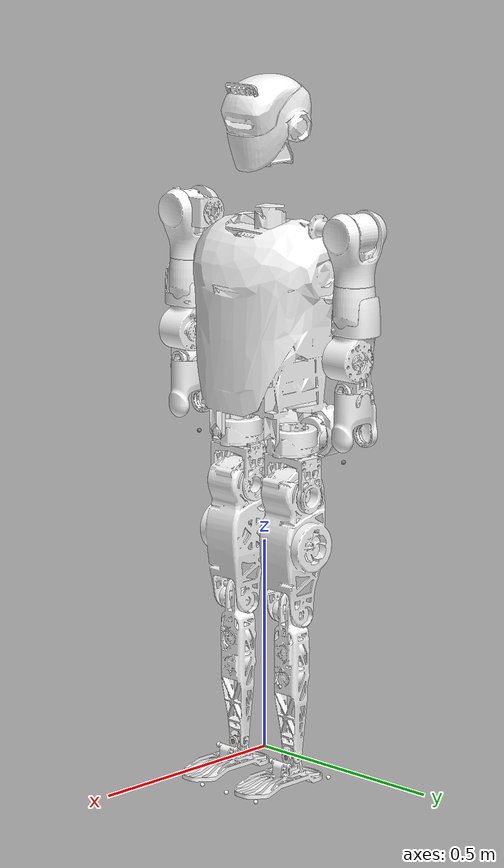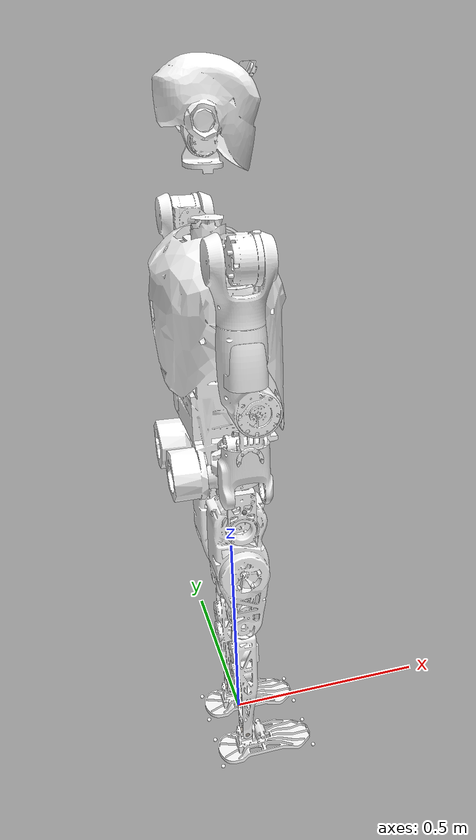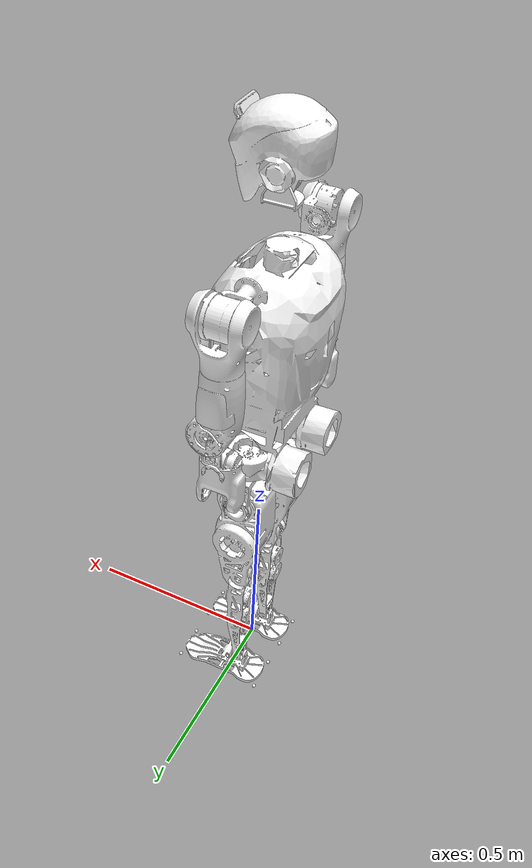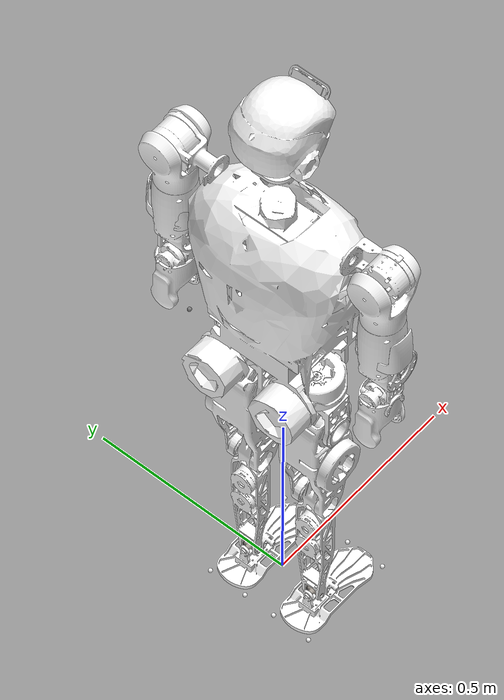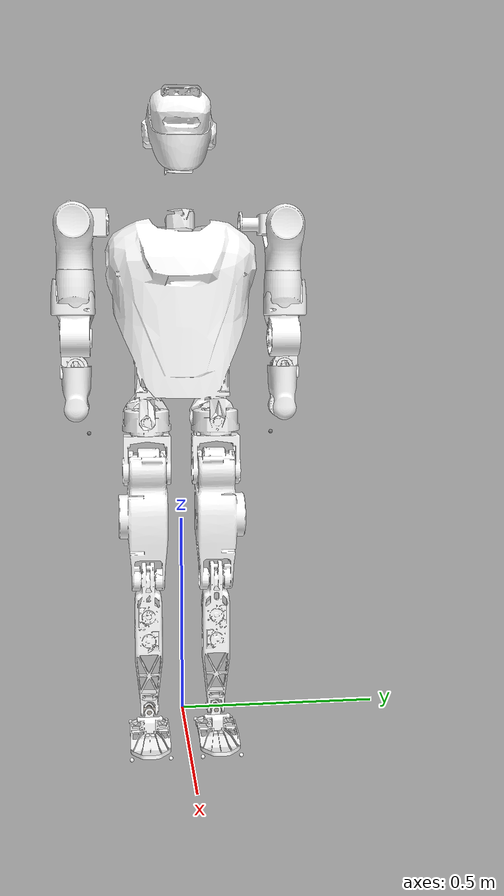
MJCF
<mujoco model="biped_s41">
  <compiler angle="radian" meshdir="../meshes/"/>
  <size njmax="500" nconmax="100" />
  <asset>
    <texture type="skybox" builtin="gradient" rgb1="0.4 0.6 0.8" width="128" height="128"/>
    <texture name="grid" type="2d" builtin="checker" rgb1=".1 .2 .3" rgb2=".2 .3 .4" width="300" height="300"/>
    <material name="grid" texture="grid" texrepeat="8 8" reflectance=".1"/>
    <mesh name="base_link" file="torso.STL"/>
    <mesh name="l_leg_roll" file="l_leg_roll.STL"/>
    <mesh name="l_leg_yaw" file="l_leg_yaw.STL"/>
    <mesh name="l_leg_pitch" file="l_leg_pitch.STL"/>
    <mesh name="l_knee" file="l_knee.STL"/>
    <mesh name="l_foot_pitch" file="l_foot_pitch.STL"/>
    <mesh name="l_foot_roll" file="l_foot_roll.STL"/>
    <mesh name="r_leg_roll" file="r_leg_roll.STL"/>
    <mesh name="r_leg_yaw" file="r_leg_yaw.STL"/>
    <mesh name="r_leg_pitch" file="r_leg_pitch.STL"/>
    <mesh name="r_knee" file="r_knee.STL"/>
    <mesh name="r_foot_pitch" file="r_foot_pitch.STL"/>
    <mesh name="r_foot_roll" file="r_foot_roll.STL"/>
    <mesh name="l_arm_pitch" file="l_arm_pitch.STL"/>
    <mesh name="l_arm_roll" file="l_arm_roll.STL"/>
    <mesh name="l_arm_yaw" file="l_arm_yaw.STL"/>
    <mesh name="l_forearm_pitch" file="l_forearm_pitch.STL"/>
    <mesh name="l_hand_yaw" file="l_hand_yaw.STL"/>
    <mesh name="l_hand_pitch" file="l_hand_pitch.STL"/>
    <mesh name="l_hand_roll" file="l_hand_roll.STL"/>
    <mesh name="r_arm_pitch" file="r_arm_pitch.STL"/>
    <mesh name="r_arm_roll" file="r_arm_roll.STL"/>
    <mesh name="r_arm_yaw" file="r_arm_yaw.STL"/>
    <mesh name="r_forearm_pitch" file="r_forearm_pitch.STL"/>
    <mesh name="r_hand_yaw" file="r_hand_yaw.STL"/>
    <mesh name="r_hand_pitch" file="r_hand_pitch.STL"/>
    <mesh name="r_hand_roll" file="r_hand_roll.STL"/>
    <mesh name="neck_motor" file="neck_motor.STL" />
    <mesh name="head" file="head.STL" />
    <mesh name="camera" file="camera.STL" />
  </asset>
  <worldbody>
    <body name="base_link" pos="0 0 0.82">
      <freejoint/>
      <inertial pos="-0.0146307 0.00469612 0.162168" quat="0.994637 -0.0551086 -0.0498455 -0.0719463" mass="25.2622" diaginertia="0.523209 0.422858 0.190433"/>
      <geom type="mesh" contype="0" conaffinity="0" group="1" density="0" rgba="1 1 1 1" mesh="base_link"/>
      <geom type="mesh" rgba="1 1 1 1" mesh="base_link"/>
      <site name="imu" pos="0 0 0"/>
      <body name="leg_l1_link" pos="-0.0024999 0.087 -0.066">
        <inertial pos="-0.00430148 -2.708e-05 -0.00851195" quat="0.00114226 0.692081 0.00279499 0.721814" mass="1.71093" diaginertia="0.00371121 0.00277272 0.00205799"/>
        <joint name="leg_l1_joint" pos="0 0 0" axis="1 0 0" range="-0.31416 0.66323" damping='0.2' />
        <geom type="mesh" contype="0" conaffinity="0" group="1" density="0" rgba="1 1 1 1" mesh="l_leg_roll"/>
        <body name="leg_l2_link">
          <inertial pos="0 -0.0032256 -0.0908087" quat="0.769899 0.638166 1.50247e-05 -1.35996e-05" mass="0.557629" diaginertia="0.00213816 0.00140333 0.00117498"/>
          <joint name="leg_l2_joint" pos="0 0 0" axis="0 0 1" range="-0.87266 0.7854" damping='0.2' />
          <geom type="mesh" contype="0" conaffinity="0" group="1" density="0" rgba="1 1 1 1" mesh="l_leg_yaw"/>
          <body name="leg_l3_link" pos="0 0 -0.1287">
            <inertial pos="0.00185677 0.0102346 -0.0855838" quat="0.724347 0.00513635 0.0261431 0.688921" mass="4.43577" diaginertia="0.0434466 0.0427748 0.0109324"/>
            <joint name="leg_l3_joint" pos="0 0 0" axis="0 1 0" range="-1.5708 2.0071" damping='0.2' />
            <geom type="mesh" contype="0" conaffinity="0" group="1" density="0" rgba="1 1 1 1" mesh="l_leg_pitch"/>
            <body name="leg_l4_link" pos="0 0 -0.284">
              <inertial pos="0.00716677 -6.696e-05 -0.114819" quat="0.999988 0.000491325 0.000347396 0.0048566" mass="1.61275" diaginertia="0.011037 0.0109512 0.000872235"/>
              <joint name="leg_l4_joint" pos="0 0 0" axis="0 1 0" range="0 2.618" damping='0.2' />
              <geom type="mesh" contype="0" conaffinity="0" group="1" density="0" rgba="1 1 1 1" mesh="l_knee"/>
              <body name="leg_l5_link" pos="0 0 -0.346">
                <inertial pos="0 0 0" quat="0.5 0.5 -0.5 0.5" mass="0.0719352" diaginertia="1.218e-05 6.92e-06 6.92e-06"/>
                <joint name="leg_l5_joint" pos="0 0 0" axis="0 1 0" range="-0.73304 0.38397" damping='0.2' />
                <geom type="mesh" contype="0" conaffinity="0" group="1" density="0" rgba="0.647059 0.619608 0.588235 1" mesh="l_foot_pitch"/>
                <body name="leg_l6_link">
                  <inertial pos="0.0373958 -2.2061e-06 -0.0389679" quat="-5.61629e-06 0.695245 1.1461e-05 0.718773" mass="0.501754" diaginertia="0.00177876 0.00163456 0.000397"/>
                  <joint name="leg_l6_joint" pos="0 0 0" axis="1 0 0" range="-0.5236 0.5236" damping='0.2' />
                  <geom type="mesh" contype="0" conaffinity="0" group="1" density="0" rgba="1 1 1 1" mesh="l_foot_roll"/>
                  <geom size="0.005" pos="-0.07316 0.04773 -0.0593" contype="0" conaffinity="0" group="1" density="0" rgba="1 1 1 1"/>
                  <geom size="0.005" pos="-0.07316 0.04773 -0.0593" rgba="1 1 1 1"/>
                  <geom size="0.005" pos="-0.07316 -0.04773 -0.0593" contype="0" conaffinity="0" group="1" density="0" rgba="1 1 1 1"/>
                  <geom size="0.005" pos="-0.07316 -0.04773 -0.0593" rgba="1 1 1 1"/>
                  <geom size="0.005" pos="0.16902 0.04773 -0.0593" contype="0" conaffinity="0" group="1" density="0" rgba="1 1 1 1"/>
                  <geom size="0.005" pos="0.16902 0.04773 -0.0593" rgba="1 1 1 1"/>
                  <geom size="0.005" pos="0.16902 -0.04773 -0.0593" contype="0" conaffinity="0" group="1" density="0" rgba="1 1 1 1"/>
                  <geom size="0.005" pos="0.16902 -0.04773 -0.0593" rgba="1 1 1 1"/>
                </body>
              </body>
            </body>
          </body>
        </body>
      </body>
      <body name="leg_r1_link" pos="-0.0024999 -0.087 -0.066">
        <inertial pos="-0.00430146 2.709e-05 -0.00851195" quat="-0.00114226 0.692081 -0.00279499 0.721814" mass="1.71093" diaginertia="0.00371121 0.00277272 0.00205799"/>
        <joint name="leg_r1_joint" pos="0 0 0" axis="1 0 0" range="-0.31416 0.66323" damping='0.2' />
        <geom type="mesh" contype="0" conaffinity="0" group="1" density="0" rgba="1 1 1 1" mesh="r_leg_roll"/>
        <body name="leg_r2_link">
          <inertial pos="0 0.00322561 -0.0908087" quat="0.638166 0.769899 1.35996e-05 -1.50247e-05" mass="0.557629" diaginertia="0.00213816 0.00140333 0.00117498"/>
          <joint name="leg_r2_joint" pos="0 0 0" axis="0 0 1" range="-0.87266 0.7854" damping='0.2' />
          <geom type="mesh" contype="0" conaffinity="0" group="1" density="0" rgba="1 1 1 1" mesh="r_leg_yaw"/>
          <body name="leg_r3_link" pos="0 0 -0.1287">
            <inertial pos="0.00185677 -0.0102346 -0.0855838" quat="0.714834 0.0057373 0.0258337 0.698793" mass="4.43577" diaginertia="0.0442361 0.0427757 0.010933"/>
            <joint name="leg_r3_joint" pos="0 0 0" axis="0 1 0" range="-1.5708 2.0071" damping='0.2' />
            <geom type="mesh" contype="0" conaffinity="0" group="1" density="0" rgba="1 1 1 1" mesh="r_leg_pitch"/>
            <body name="leg_r4_link" pos="0 0 -0.284">
              <inertial pos="0.00716677 6.696e-05 -0.114819" quat="0.999988 0.000491325 0.000347396 0.0048566" mass="1.61275" diaginertia="0.011037 0.0109512 0.000872235"/>
              <joint name="leg_r4_joint" pos="0 0 0" axis="0 1 0" range="0 2.618" damping='0.2' />
              <geom type="mesh" contype="0" conaffinity="0" group="1" density="0" rgba="1 1 1 1" mesh="r_knee"/>
              <body name="leg_r5_link" pos="0 0 -0.346">
                <inertial pos="0 0 0" quat="0.5 0.5 -0.5 0.5" mass="0.0719352" diaginertia="1.218e-05 6.92e-06 6.92e-06"/>
                <joint name="leg_r5_joint" pos="0 0 0" axis="0 1 0" range="-0.73304 0.38397" damping='0.2' />
                <geom type="mesh" contype="0" conaffinity="0" group="1" density="0" rgba="0.647059 0.619608 0.588235 1" mesh="r_foot_pitch"/>
                <body name="leg_r6_link">
                  <inertial pos="0.0373958 -2.2061e-06 -0.0389679" quat="-5.61629e-06 0.695245 1.1461e-05 0.718773" mass="0.501754" diaginertia="0.00177876 0.00163456 0.000397"/>
                  <joint name="leg_r6_joint" pos="0 0 0" axis="1 0 0" range="-0.5236 0.5236" damping='0.2' />
                  <geom type="mesh" contype="0" conaffinity="0" group="1" density="0" rgba="1 1 1 1" mesh="r_foot_roll"/>
                  <geom size="0.005" pos="-0.07316 0.04773 -0.0593" contype="0" conaffinity="0" group="1" density="0" rgba="1 1 1 1"/>
                  <geom size="0.005" pos="-0.07316 0.04773 -0.0593" rgba="1 1 1 1"/>
                  <geom size="0.005" pos="-0.07316 -0.04773 -0.0593" contype="0" conaffinity="0" group="1" density="0" rgba="1 1 1 1"/>
                  <geom size="0.005" pos="-0.07316 -0.04773 -0.0593" rgba="1 1 1 1"/>
                  <geom size="0.005" pos="0.16902 0.04773 -0.0593" contype="0" conaffinity="0" group="1" density="0" rgba="1 1 1 1"/>
                  <geom size="0.005" pos="0.16902 0.04773 -0.0593" rgba="1 1 1 1"/>
                  <geom size="0.005" pos="0.16902 -0.04773 -0.0593" contype="0" conaffinity="0" group="1" density="0" rgba="1 1 1 1"/>
                  <geom size="0.005" pos="0.16902 -0.04773 -0.0593" rgba="1 1 1 1"/>
                </body>
              </body>
            </body>
          </body>
        </body>
      </body>
      <body name="zarm_l1_link" pos="-0.0175476 0.2617 0.4245">
        <inertial pos="0.0146835 -0.0166604 -6.82857e-05" quat="0.696586 0.712206 -0.0625859 -0.0601207" mass="0.794" diaginertia="0.000271947 0.000196224 0.000121256"/>
        <joint name="zarm_l1_joint" pos="0 0 0" axis="0 1 0" range="-2.0933 0.5233" actuatorfrcrange="-60 60" damping='0.2' />
        <geom type="mesh" contype="0" conaffinity="0" group="1" density="0" rgba="1 1 1 1" mesh="l_arm_pitch"/>
        <body name="zarm_l2_link">
          <inertial pos="0.0222873 0.0156946 -0.0202262" quat="0.398328 0.58059 0.26378 0.659295" mass="0.20735" diaginertia="0.000283338 0.000217951 0.000157462"/>
          <joint name="zarm_l2_joint" pos="0 0 0" axis="1 0 0" range="-0.3489 2.0933" actuatorfrcrange="-82.8 82.8" damping='0.2' />
          <geom type="mesh" contype="0" conaffinity="0" group="1" density="0" rgba="1 1 1 1" mesh="l_arm_roll"/>
          <body name="zarm_l3_link">
            <inertial pos="6.1694e-05 0.00525815 -0.128822" quat="0.237126 0.666158 0.237177 0.666147" mass="1.12063" diaginertia="9.38963e-05 7.96873e-05 7.00576e-05"/>
            <joint name="zarm_l3_joint" pos="0 0 0" axis="0 0 1" range="-1.57 1.57" actuatorfrcrange="-60 60" damping='0.2' />
            <geom type="mesh" contype="0" conaffinity="0" group="1" density="0" rgba="1 1 1 1" mesh="l_arm_yaw"/>
            <body name="zarm_l4_link" pos="0 0 -0.1636">
              <inertial pos="-1.42819e-05 0.00938314 -0.0522688" quat="0.632873 0.313955 0.634285 0.313985" mass="0.395825" diaginertia="0.00013362 0.000113739 9.55807e-05"/>
              <joint name="zarm_l4_joint" pos="0 0 0" axis="0 1 0" range="-2.0933 0" actuatorfrcrange="-60 60" damping='0.2' />
              <geom type="mesh" contype="0" conaffinity="0" group="1" density="0" rgba="1 1 1 1" mesh="l_forearm_pitch"/>
              <body name="zarm_l5_link" pos="0 0 -0.19105">
                <inertial pos="0.000113133 0.00969228 0.0817961" quat="0.493085 0.506908 0.492087 0.507703" mass="0.380792" diaginertia="0.000122264 8.44608e-05 7.64924e-05"/>
                <joint name="zarm_l5_joint" pos="0 0 0" axis="0 0 1" range="-1.657 1.657" actuatorfrcrange="-6 6" damping='0.2' />
                <geom type="mesh" contype="0" conaffinity="0" group="1" density="0" rgba="1 1 1 1" mesh="l_hand_yaw"/>
                <body name="zarm_l6_link">
                  <inertial pos="0.0081061 0.00489663 0.00622489" quat="0.972746 -0.202646 -0.0967872 0.0577326" mass="0.376651" diaginertia="4.90153e-05 3.61802e-05 2.19136e-05"/>
                  <joint name="zarm_l6_joint" pos="0 0 0" axis="0 1 0" range="-1.657 1.657" actuatorfrcrange="-6 6" damping='0.2' />
                  <geom type="mesh" contype="0" conaffinity="0" group="1" density="0" rgba="1 1 1 1" mesh="l_hand_pitch"/>
                  <body name="zarm_l7_link">
                    <inertial pos="0.00557087 0.00644656 -0.0826894" quat="0.378878 0.570642 0.285709 0.670216" mass="0.705193" diaginertia="0.000126318 0.000107575 8.42004e-05"/>
                    <joint name="zarm_l7_joint" pos="0 0 0" axis="1 0 0" range="-1.57 1.57" actuatorfrcrange="-6 6" damping='0.2' />
                    <geom type="mesh" contype="0" conaffinity="0" group="1" density="0" rgba="1 1 1 1" mesh="l_hand_roll"/>
                    <geom size="0.005" pos="0 -0.03 -0.17"/>
                  </body>
                </body>
              </body>
            </body>
          </body>
        </body>
      </body>
      <body name="zarm_r1_link" pos="-0.0175476 -0.2617 0.4245">
        <inertial pos="0.0146744 0.0168298 -8.16712e-05" quat="0.712375 0.696324 0.0605536 0.0631598" mass="0.794" diaginertia="0.000271946 0.000196219 0.000121103"/>
        <joint name="zarm_r1_joint" pos="0 0 0" axis="0 1 0" range="-2.0933 0.5233" actuatorfrcrange="-60 60" damping='0.2' />
        <geom type="mesh" contype="0" conaffinity="0" group="1" density="0" rgba="1 1 1 1" mesh="r_arm_pitch"/>
        <body name="zarm_r2_link">
          <inertial pos="0.0223009 -0.015695 -0.0202308" quat="0.65931 0.264022 0.580473 0.398313" mass="0.20735" diaginertia="0.000283519 0.000218099 0.000157689"/>
          <joint name="zarm_r2_joint" pos="0 0 0" axis="1 0 0" range="-2.0933 0.3489" actuatorfrcrange="-82.8 82.8" damping='0.2' />
          <geom type="mesh" contype="0" conaffinity="0" group="1" density="0" rgba="1 1 1 1" mesh="r_arm_roll"/>
          <body name="zarm_r3_link">
            <inertial pos="-4.82749e-05 -0.00525815 -0.128822" quat="-0.237177 0.666147 -0.237126 0.666158" mass="1.12063" diaginertia="9.38963e-05 7.96873e-05 7.00576e-05"/>
            <joint name="zarm_r3_joint" pos="0 0 0" axis="0 0 1" range="-1.57 1.57" actuatorfrcrange="-60 60" damping='0.2' />
            <geom type="mesh" contype="0" conaffinity="0" group="1" density="0" rgba="1 1 1 1" mesh="r_arm_yaw"/>
            <body name="zarm_r4_link" pos="0 0 -0.1636">
              <inertial pos="-0.000127233 -0.00951603 -0.0522688" quat="0.314696 0.632501 0.314725 0.633922" mass="0.395825" diaginertia="0.000133455 0.000113904 9.55807e-05"/>
              <joint name="zarm_r4_joint" pos="0 0 0" axis="0 1 0" range="-2.0933 0" actuatorfrcrange="-60 60" damping='0.2' />
              <geom type="mesh" contype="0" conaffinity="0" group="1" density="0" rgba="1 1 1 1" mesh="r_forearm_pitch"/>
              <body name="zarm_r5_link" pos="0 0 -0.19105">
                <inertial pos="-0.000113133 -0.00974484 0.0817961" quat="0.506908 0.493085 0.507703 0.492087" mass="0.380792" diaginertia="0.000122264 8.44608e-05 7.64924e-05"/>
                <joint name="zarm_r5_joint" pos="0 0 0" axis="0 0 1" range="-1.657 1.657" actuatorfrcrange="-6 6" damping='0.2' />
                <geom type="mesh" contype="0" conaffinity="0" group="1" density="0" rgba="1 1 1 1" mesh="r_hand_yaw"/>
                <body name="zarm_r6_link">
                  <inertial pos="0.00735987 -0.00475238 0.00605888" quat="0.97227 0.205866 -0.0962427 -0.0552063" mass="0.376651" diaginertia="4.89785e-05 3.6108e-05 2.20226e-05"/>
                  <joint name="zarm_r6_joint" pos="0 0 0" axis="0 1 0" range="-1.657 1.657" actuatorfrcrange="-6 6" damping='0.2' />
                  <geom type="mesh" contype="0" conaffinity="0" group="1" density="0" rgba="1 1 1 1" mesh="r_hand_pitch"/>
                  <body name="zarm_r7_link">
                    <inertial pos="0.00459104 -0.00584264 -0.0836966" quat="0.678609 0.268346 0.578196 0.364925" mass="0.705193" diaginertia="0.000247322 0.000207835 0.000163356"/>
                    <joint name="zarm_r7_joint" pos="0 0 0" axis="1 0 0" range="-1.57 1.57" actuatorfrcrange="-6 6" damping='0.2' />
                    <geom type="mesh" contype="0" conaffinity="0" group="1" density="0" rgba="1 1 1 1" mesh="r_hand_roll"/>
                    <geom size="0.005" pos="0 0.03 -0.17"/>
                  </body>
                </body>
              </body>
            </body>
          </body>
        </body>
      </body>
      <body name="neck_motor" pos="-0.0185 0 0.6014">
            <inertial pos="2.15065e-05 0.00604886 -0.0105235" quat="0.673377 -0.223487 0.219366 0.669698" mass="0.0736988" diaginertia="4.68229e-05 3.67344e-05 3.13569e-05" />
            <joint name="neck_motor" pos="0 0 0" axis="0 0 1" limited="true" range="-1.57 1.57" />
            <geom type="mesh" contype="0" conaffinity="0" group="1" rgba="1 1 1 1" mesh="neck_motor" />
            <geom type="mesh" rgba="1 1 1 1" mesh="neck_motor" />
            <body name="head" pos="0 0 0">
                <inertial pos="0.0288293 -0.000555727 0.109528" quat="0.946713 0.00285973 -0.32153 0.018565" mass="0.621655" diaginertia="0.00252459 0.00223454 0.00172044" />
                <joint name="head" pos="0 0 0" axis="0 -1 0" limited="true" range="-0.532 0.532" />
                <geom type="mesh" contype="0" conaffinity="0" group="1" rgba="1 1 1 1" mesh="head" />
                <geom type="mesh" rgba="1 1 1 1" mesh="head" />
                <geom pos="0.096751 0.0175003 0.125953" quat="0.970296 0 0.241922 0" type="mesh" contype="0" conaffinity="0" group="1" rgba="1 1 1 1" mesh="camera" />
                <geom pos="0.096751 0.0175003 0.125953" quat="0.970296 0 0.241922 0" type="mesh" rgba="1 1 1 1" mesh="camera" />
          </body>
      </body>
    </body>
  </worldbody>
  <actuator>
        <motor gear="1" joint="leg_l1_joint" name="leg_l1_motor" ctrllimited="true"  ctrlrange='-150 150'/>
        <motor gear="1" joint="leg_l2_joint" name="leg_l2_motor" ctrllimited="true"  ctrlrange='-150 150'/>
        <motor gear="1" joint="leg_l3_joint" name="leg_l3_motor" ctrllimited="true"  ctrlrange='-200 200'/>
        <motor gear="1" joint="leg_l4_joint" name="leg_l4_motor" ctrllimited="true"  ctrlrange='-200 200'/>
        <motor gear="1" joint="leg_l5_joint" name="leg_l5_motor" ctrllimited="true"  ctrlrange='-90 90'/>
        <motor gear="1" joint="leg_l6_joint" name="leg_l6_motor" ctrllimited="true"  ctrlrange='-90 90'/>

        <motor gear="1" joint="leg_r1_joint" name="leg_r1_motor" ctrllimited="true"  ctrlrange='-150 150'/>
        <motor gear="1" joint="leg_r2_joint" name="leg_r2_motor" ctrllimited="true"  ctrlrange='-150 150'/>
        <motor gear="1" joint="leg_r3_joint" name="leg_r3_motor" ctrllimited="true"  ctrlrange='-200 200'/>
        <motor gear="1" joint="leg_r4_joint" name="leg_r4_motor" ctrllimited="true"  ctrlrange='-200 200'/>
        <motor gear="1" joint="leg_r5_joint" name="leg_r5_motor" ctrllimited="true"  ctrlrange='-90 90'/>
        <motor gear="1" joint="leg_r6_joint" name="leg_r6_motor" ctrllimited="true"  ctrlrange='-90 90'/>

        <motor gear="1" joint="zarm_l1_joint" name="zarm_l1_motor" ctrllimited="true"  ctrlrange='-150 150'/>
        <motor gear="1" joint="zarm_l2_joint" name="zarm_l2_motor" ctrllimited="true"  ctrlrange='-150 150'/>
        <motor gear="1" joint="zarm_l3_joint" name="zarm_l3_motor" ctrllimited="true"  ctrlrange='-200 200'/>
        <motor gear="1" joint="zarm_l4_joint" name="zarm_l4_motor" ctrllimited="true"  ctrlrange='-200 200'/>
        <motor gear="1" joint="zarm_l5_joint" name="zarm_l5_motor" ctrllimited="true"  ctrlrange='-90 90'/>
        <motor gear="1" joint="zarm_l6_joint" name="zarm_l6_motor" ctrllimited="true"  ctrlrange='-90 90'/>
        <motor gear="1" joint="zarm_l7_joint" name="zarm_l7_motor" ctrllimited="true"  ctrlrange='-90 90'/>

        <motor gear="1" joint="zarm_r1_joint" name="zarm_r1_motor" ctrllimited="true"  ctrlrange='-150 150'/>
        <motor gear="1" joint="zarm_r2_joint" name="zarm_r2_motor" ctrllimited="true"  ctrlrange='-150 150'/>
        <motor gear="1" joint="zarm_r3_joint" name="zarm_r3_motor" ctrllimited="true"  ctrlrange='-200 200'/>
        <motor gear="1" joint="zarm_r4_joint" name="zarm_r4_motor" ctrllimited="true"  ctrlrange='-200 200'/>
        <motor gear="1" joint="zarm_r5_joint" name="zarm_r5_motor" ctrllimited="true"  ctrlrange='-90 90'/>
        <motor gear="1" joint="zarm_r6_joint" name="zarm_r6_motor" ctrllimited="true"  ctrlrange='-90 90'/>
        <motor gear="1" joint="zarm_r7_joint" name="zarm_r7_motor" ctrllimited="true"  ctrlrange='-90 90'/>
        <motor gear="1" joint="neck_motor" name="head_yaw_motor" ctrllimited="true"  ctrlrange='-90 90'/>
        <motor gear="1" joint="head" name="head_pitch_motor" ctrllimited="true"  ctrlrange='-90 90'/>
  </actuator>
  <sensor>
      <accelerometer name="BodyAcc" site="imu"/>
      <velocimeter name="BodyVel" site="imu"/>
      <gyro name="BodyGyro" site="imu"/>
      <framepos name="BodyPos" objtype="site" objname="imu"/>
      <framequat name="BodyQuat" objtype="site" objname="imu"/>

      <jointpos name="leg_l1_pos" joint="leg_l1_joint"/>
      <jointpos name="leg_l2_pos" joint="leg_l2_joint"/>
      <jointpos name="leg_l3_pos" joint="leg_l3_joint"/>
      <jointpos name="leg_l4_pos" joint="leg_l4_joint"/>
      <jointpos name="leg_l5_pos" joint="leg_l5_joint"/>
      <jointpos name="leg_l6_pos" joint="leg_l6_joint"/>

      <jointpos name="leg_r1_pos" joint="leg_r1_joint"/>
      <jointpos name="leg_r2_pos" joint="leg_r2_joint"/>
      <jointpos name="leg_r3_pos" joint="leg_r3_joint"/>
      <jointpos name="leg_r4_pos" joint="leg_r4_joint"/>
      <jointpos name="leg_r5_pos" joint="leg_r5_joint"/>
      <jointpos name="leg_r6_pos" joint="leg_r6_joint"/>

      <jointpos name="zarm_l1_pos" joint="zarm_l1_joint"/>
      <jointpos name="zarm_l2_pos" joint="zarm_l2_joint"/>
      <jointpos name="zarm_l3_pos" joint="zarm_l3_joint"/>
      <jointpos name="zarm_l4_pos" joint="zarm_l4_joint"/>
      <jointpos name="zarm_l5_pos" joint="zarm_l5_joint"/>
      <jointpos name="zarm_l6_pos" joint="zarm_l6_joint"/>
      <jointpos name="zarm_l7_pos" joint="zarm_l7_joint"/>

      <jointpos name="zarm_r1_pos" joint="zarm_r1_joint"/>
      <jointpos name="zarm_r2_pos" joint="zarm_r2_joint"/>
      <jointpos name="zarm_r3_pos" joint="zarm_r3_joint"/>
      <jointpos name="zarm_r4_pos" joint="zarm_r4_joint"/>
      <jointpos name="zarm_r5_pos" joint="zarm_r5_joint"/>
      <jointpos name="zarm_r6_pos" joint="zarm_r6_joint"/>
      <jointpos name="zarm_r7_pos" joint="zarm_r7_joint"/>
      <jointpos name="head_yaw_pos" joint="neck_motor"/>
      <jointpos name="head_pitch_pos" joint="head"/>

      <jointvel name="leg_l1_vel" joint="leg_l1_joint"/>
      <jointvel name="leg_l2_vel" joint="leg_l2_joint"/>
      <jointvel name="leg_l3_vel" joint="leg_l3_joint"/>
      <jointvel name="leg_l4_vel" joint="leg_l4_joint"/>
      <jointvel name="leg_l5_vel" joint="leg_l5_joint"/>
      <jointvel name="leg_l6_vel" joint="leg_l6_joint"/>

      <jointvel name="leg_r1_vel" joint="leg_r1_joint"/>
      <jointvel name="leg_r2_vel" joint="leg_r2_joint"/>
      <jointvel name="leg_r3_vel" joint="leg_r3_joint"/>
      <jointvel name="leg_r4_vel" joint="leg_r4_joint"/>
      <jointvel name="leg_r5_vel" joint="leg_r5_joint"/>
      <jointvel name="leg_r6_vel" joint="leg_r6_joint"/>

      <jointvel name="zarm_l1_vel" joint="zarm_l1_joint"/>
      <jointvel name="zarm_l2_vel" joint="zarm_l2_joint"/>
      <jointvel name="zarm_l3_vel" joint="zarm_l3_joint"/>
      <jointvel name="zarm_l4_vel" joint="zarm_l4_joint"/>
      <jointvel name="zarm_l5_vel" joint="zarm_l5_joint"/>
      <jointvel name="zarm_l6_vel" joint="zarm_l6_joint"/>
      <jointvel name="zarm_l7_vel" joint="zarm_l7_joint"/>

      <jointvel name="zarm_r1_vel" joint="zarm_r1_joint"/>
      <jointvel name="zarm_r2_vel" joint="zarm_r2_joint"/>
      <jointvel name="zarm_r3_vel" joint="zarm_r3_joint"/>
      <jointvel name="zarm_r4_vel" joint="zarm_r4_joint"/>
      <jointvel name="zarm_r5_vel" joint="zarm_r5_joint"/>
      <jointvel name="zarm_r6_vel" joint="zarm_r6_joint"/>
      <jointvel name="zarm_r7_vel" joint="zarm_r7_joint"/>
      <jointvel name="head_yaw_vel" joint="neck_motor"/>
      <jointvel name="head_pitch_vel" joint="head"/>
  </sensor>
</mujoco>
